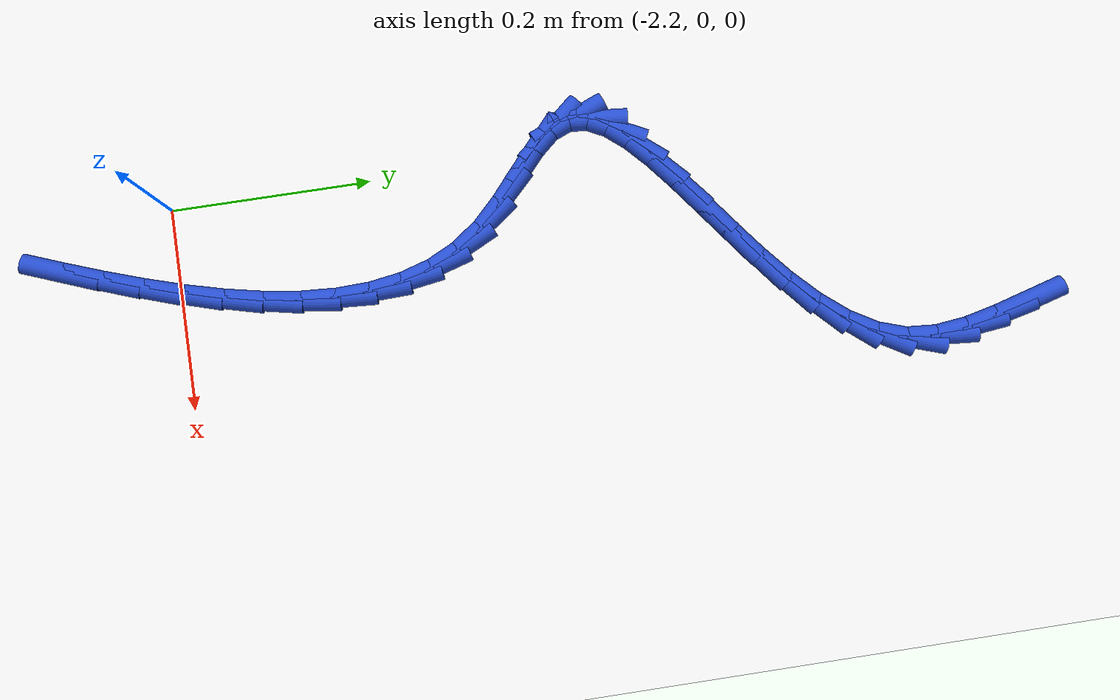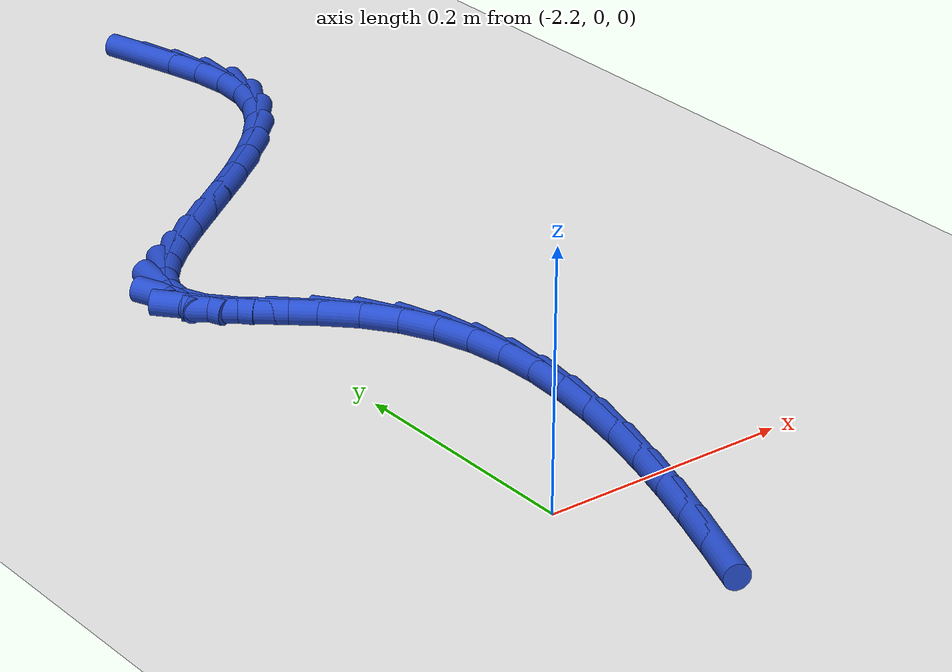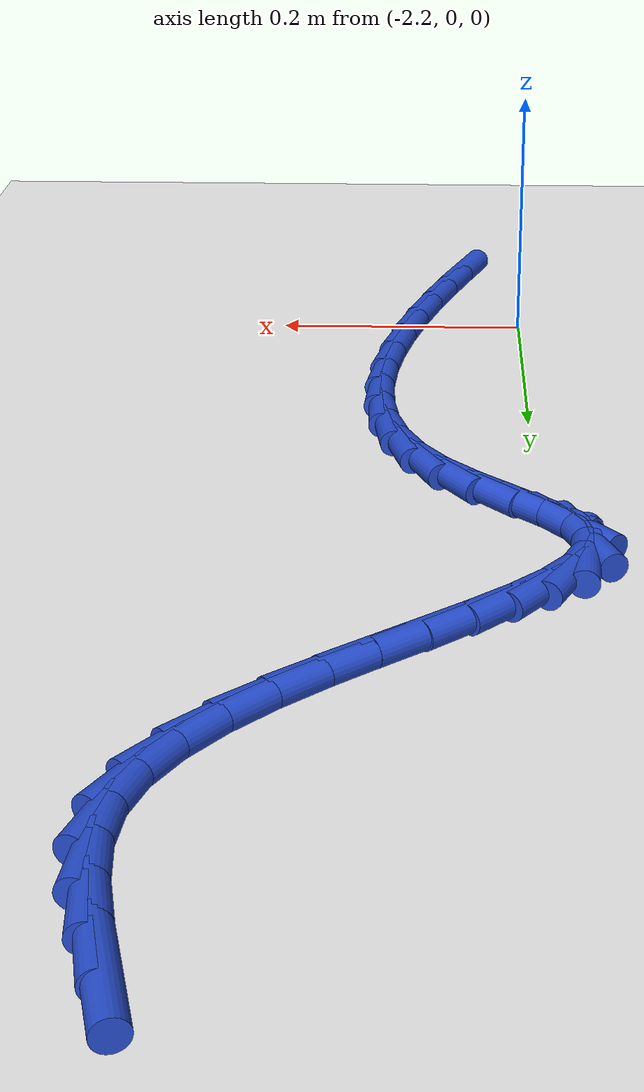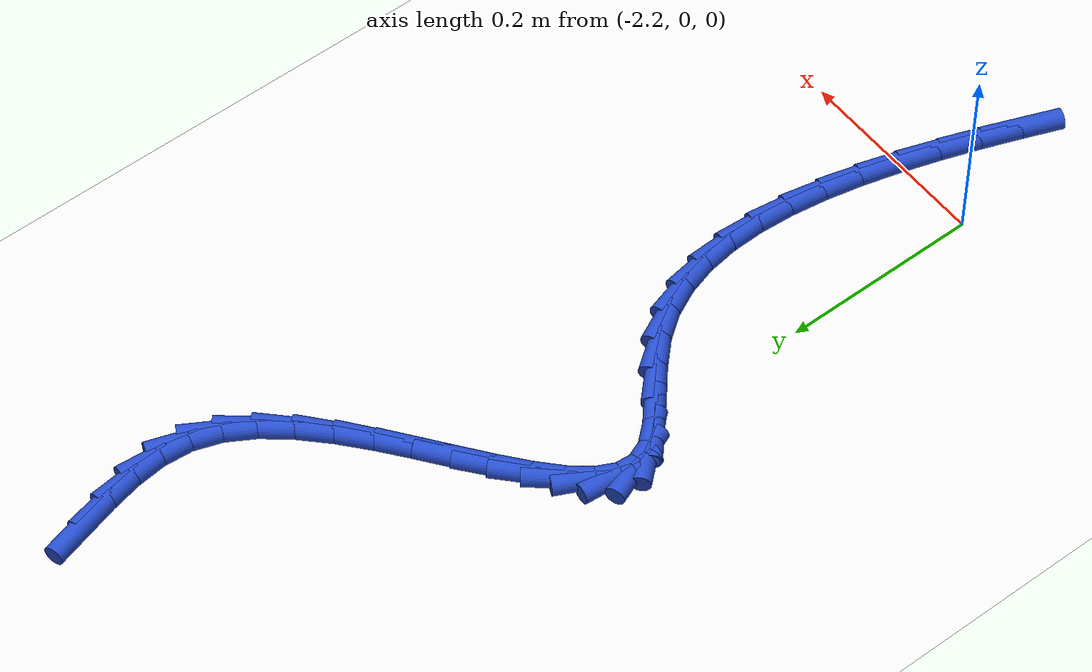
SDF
<sdf version="1.6">
 <world name="default">
  <model name="ground_plane">
   <static>1</static>
   <link name="link">
    <collision name="collision">
     <geometry><plane><normal>0 0 1</normal><size>100 100</size></plane></geometry>
     <surface><friction><ode><mu>100</mu><mu2>50</mu2></ode></friction></surface>
    </collision>
    <visual name="visual">
     <cast_shadows>0</cast_shadows>
     <geometry><plane><normal>0 0 1</normal><size>100 100</size></plane></geometry>
     <material>
      <script><uri>file://media/materials/scripts/gazebo.material</uri><name>Gazebo/WhiteGlow</name></script>
     </material>
    </visual>
   </link>
  </model>
  <model name="line">
   <link name="link_100">
    <pose>-1.9816794184876345 0.8221886198956128 0.01 0 1.57 -1.2984343508076517</pose>
    <collision name="collision">
     <geometry><cylinder><radius>0.01</radius><length>0.08</length></cylinder></geometry>
    </collision>
    <visual name="visual">
     <material>
      <script><name>Gazebo/Blue</name><uri>file://media/materials/scripts/gazebo.material</uri></script>
     </material>
     <geometry><cylinder><radius>0.01</radius><length>0.08</length></cylinder></geometry>
    </visual>
   </link>
   <link name="link_101">
    <pose>-1.9730393059040865 0.7912540363147059 0.01 0 1.57 -1.349709109669788</pose>
    <collision name="collision">
     <geometry><cylinder><radius>0.01</radius><length>0.08</length></cylinder></geometry>
    </collision>
    <visual name="visual">
     <material>
      <script><name>Gazebo/Blue</name><uri>file://media/materials/scripts/gazebo.material</uri></script>
     </material>
     <geometry><cylinder><radius>0.01</radius><length>0.08</length></cylinder></geometry>
    </visual>
   </link>
   <link name="link_102">
    <pose>-1.9660199036588826 0.7600235586736067 0.01 0 1.57 -1.4638797680123594</pose>
    <collision name="collision">
     <geometry><cylinder><radius>0.01</radius><length>0.08</length></cylinder></geometry>
    </collision>
    <visual name="visual">
     <material>
      <script><name>Gazebo/Blue</name><uri>file://media/materials/scripts/gazebo.material</uri></script>
     </material>
     <geometry><cylinder><radius>0.01</radius><length>0.08</length></cylinder></geometry>
    </visual>
   </link>
   <link name="link_103">
    <pose>-1.9627001316639885 0.729091841663659 0.01 0 1.57 1.4891236434783854</pose>
    <collision name="collision">
     <geometry><cylinder><radius>0.01</radius><length>0.08</length></cylinder></geometry>
    </collision>
    <visual name="visual">
     <material>
      <script><name>Gazebo/Blue</name><uri>file://media/materials/scripts/gazebo.material</uri></script>
     </material>
     <geometry><cylinder><radius>0.01</radius><length>0.08</length></cylinder></geometry>
    </visual>
   </link>
   <link name="link_104">
    <pose>-1.9651589098313713 0.6990535399762069 0.01 0 1.57 1.2423988542231177</pose>
    <collision name="collision">
     <geometry><cylinder><radius>0.01</radius><length>0.08</length></cylinder></geometry>
    </collision>
    <visual name="visual">
     <material>
      <script><name>Gazebo/Blue</name><uri>file://media/materials/scripts/gazebo.material</uri></script>
     </material>
     <geometry><cylinder><radius>0.01</radius><length>0.08</length></cylinder></geometry>
    </visual>
   </link>
   <link name="link_105">
    <pose>-1.974925557768404 0.6703900943811036 0.01 0 1.57 1.0310269131474126</pose>
    <collision name="collision">
     <geometry><cylinder><radius>0.01</radius><length>0.08</length></cylinder></geometry>
    </collision>
    <visual name="visual">
     <material>
      <script><name>Gazebo/Blue</name><uri>file://media/materials/scripts/gazebo.material</uri></script>
     </material>
     <geometry><cylinder><radius>0.01</radius><length>0.08</length></cylinder></geometry>
    </visual>
   </link>
   <link name="link_106">
    <pose>-1.9912655459393065 0.6431166081352525 0.01 0 1.57 0.8774465812900695</pose>
    <collision name="collision">
     <geometry><cylinder><radius>0.01</radius><length>0.08</length></cylinder></geometry>
    </collision>
    <visual name="visual">
     <material>
      <script><name>Gazebo/Blue</name><uri>file://media/materials/scripts/gazebo.material</uri></script>
     </material>
     <geometry><cylinder><radius>0.01</radius><length>0.08</length></cylinder></geometry>
    </visual>
   </link>
   <link name="link_107">
    <pose>-2.0128615363640656 0.6171281299233552 0.01 0 1.57 0.7709734945430039</pose>
    <collision name="collision">
     <geometry><cylinder><radius>0.01</radius><length>0.08</length></cylinder></geometry>
    </collision>
    <visual name="visual">
     <material>
      <script><name>Gazebo/Blue</name><uri>file://media/materials/scripts/gazebo.material</uri></script>
     </material>
     <geometry><cylinder><radius>0.01</radius><length>0.08</length></cylinder></geometry>
    </visual>
   </link>
   <link name="link_108">
    <pose>-2.038396190533468 0.5923197083211011 0.01 0 1.57 0.7003709969766965</pose>
    <collision name="collision">
     <geometry><cylinder><radius>0.01</radius><length>0.08</length></cylinder></geometry>
    </collision>
    <visual name="visual">
     <material>
      <script><name>Gazebo/Blue</name><uri>file://media/materials/scripts/gazebo.material</uri></script>
     </material>
     <geometry><cylinder><radius>0.01</radius><length>0.08</length></cylinder></geometry>
    </visual>
   </link>
   <link name="link_109">
    <pose>-2.066552169938299 0.56858639190418 0.01 0 1.57 0.6578597712538551</pose>
    <collision name="collision">
     <geometry><cylinder><radius>0.01</radius><length>0.08</length></cylinder></geometry>
    </collision>
    <visual name="visual">
     <material>
      <script><name>Gazebo/Blue</name><uri>file://media/materials/scripts/gazebo.material</uri></script>
     </material>
     <geometry><cylinder><radius>0.01</radius><length>0.08</length></cylinder></geometry>
    </visual>
   </link>
   <link name="link_110">
    <pose>-2.096012136069343 0.5458232292482821 0.01 0 1.57 0.6394243906540233</pose>
    <collision name="collision">
     <geometry><cylinder><radius>0.01</radius><length>0.08</length></cylinder></geometry>
    </collision>
    <visual name="visual">
     <material>
      <script><name>Gazebo/Blue</name><uri>file://media/materials/scripts/gazebo.material</uri></script>
     </material>
     <geometry><cylinder><radius>0.01</radius><length>0.08</length></cylinder></geometry>
    </visual>
   </link>
   <link name="link_111">
    <pose>-2.1254587504173865 0.523925268929097 0.01 0 1.57 0.6446556973529662</pose>
    <collision name="collision">
     <geometry><cylinder><radius>0.01</radius><length>0.08</length></cylinder></geometry>
    </collision>
    <visual name="visual">
     <material>
      <script><name>Gazebo/Blue</name><uri>file://media/materials/scripts/gazebo.material</uri></script>
     </material>
     <geometry><cylinder><radius>0.01</radius><length>0.08</length></cylinder></geometry>
    </visual>
   </link>
   <link name="link_112">
    <pose>-2.1535746744732136 0.5027875595223142 0.01 0 1.57 0.6773235850171195</pose>
    <collision name="collision">
     <geometry><cylinder><radius>0.01</radius><length>0.08</length></cylinder></geometry>
    </collision>
    <visual name="visual">
     <material>
      <script><name>Gazebo/Blue</name><uri>file://media/materials/scripts/gazebo.material</uri></script>
     </material>
     <geometry><cylinder><radius>0.01</radius><length>0.08</length></cylinder></geometry>
    </visual>
   </link>
   <link name="link_113">
    <pose>-2.179042569727611 0.48230514960362325 0.01 0 1.57 0.7475140016737614</pose>
    <collision name="collision">
     <geometry><cylinder><radius>0.01</radius><length>0.08</length></cylinder></geometry>
    </collision>
    <visual name="visual">
     <material>
      <script><name>Gazebo/Blue</name><uri>file://media/materials/scripts/gazebo.material</uri></script>
     </material>
     <geometry><cylinder><radius>0.01</radius><length>0.08</length></cylinder></geometry>
    </visual>
   </link>
   <link name="link_114">
    <pose>-2.2005450976713625 0.46237308774871455 0.01 0 1.57 0.8766357389121293</pose>
    <collision name="collision">
     <geometry><cylinder><radius>0.01</radius><length>0.08</length></cylinder></geometry>
    </collision>
    <visual name="visual">
     <material>
      <script><name>Gazebo/Blue</name><uri>file://media/materials/scripts/gazebo.material</uri></script>
     </material>
     <geometry><cylinder><radius>0.01</radius><length>0.08</length></cylinder></geometry>
    </visual>
   </link>
   <link name="link_115">
    <pose>-2.216764919795254 0.4428864225332774 0.01 0 1.57 1.1052006662199882</pose>
    <collision name="collision">
     <geometry><cylinder><radius>0.01</radius><length>0.08</length></cylinder></geometry>
    </collision>
    <visual name="visual">
     <material>
      <script><name>Gazebo/Blue</name><uri>file://media/materials/scripts/gazebo.material</uri></script>
     </material>
     <geometry><cylinder><radius>0.01</radius><length>0.08</length></cylinder></geometry>
    </visual>
   </link>
   <link name="link_116">
    <pose>-2.2263846975900727 0.4237402025330018 0.01 0 1.57 1.4810156180375946</pose>
    <collision name="collision">
     <geometry><cylinder><radius>0.01</radius><length>0.08</length></cylinder></geometry>
    </collision>
    <visual name="visual">
     <material>
      <script><name>Gazebo/Blue</name><uri>file://media/materials/scripts/gazebo.material</uri></script>
     </material>
     <geometry><cylinder><radius>0.01</radius><length>0.08</length></cylinder></geometry>
    </visual>
   </link>
   <link name="link_117">
    <pose>-2.2280870925466005 0.4048294763235768 0.01 0 1.57 -1.19028334417841</pose>
    <collision name="collision">
     <geometry><cylinder><radius>0.01</radius><length>0.08</length></cylinder></geometry>
    </collision>
    <visual name="visual">
     <material>
      <script><name>Gazebo/Blue</name><uri>file://media/materials/scripts/gazebo.material</uri></script>
     </material>
     <geometry><cylinder><radius>0.01</radius><length>0.08</length></cylinder></geometry>
    </visual>
   </link>
   <link name="link_118">
    <pose>-2.2205740466726827 0.38604722143189285 0.01 0 1.57 -0.8572598935476402</pose>
    <collision name="collision">
     <geometry><cylinder><radius>0.01</radius><length>0.08</length></cylinder></geometry>
    </collision>
    <visual name="visual">
     <material>
      <script><name>Gazebo/Blue</name><uri>file://media/materials/scripts/gazebo.material</uri></script>
     </material>
     <geometry><cylinder><radius>0.01</radius><length>0.08</length></cylinder></geometry>
    </visual>
   </link>
   <link name="link_119">
    <pose>-2.2041809837090285 0.3671109522282959 0.01 0 1.57 -0.7278493655437754</pose>
    <collision name="collision">
     <geometry><cylinder><radius>0.01</radius><length>0.08</length></cylinder></geometry>
    </collision>
    <visual name="visual">
     <material>
      <script><name>Gazebo/Blue</name><uri>file://media/materials/scripts/gazebo.material</uri></script>
     </material>
     <geometry><cylinder><radius>0.01</radius><length>0.08</length></cylinder></geometry>
    </visual>
   </link>
   <link name="link_120">
    <pose>-2.1820956732341763 0.3474317936119859 0.01 0 1.57 -0.713606265866145</pose>
    <collision name="collision">
     <geometry><cylinder><radius>0.01</radius><length>0.08</length></cylinder></geometry>
    </collision>
    <visual name="visual">
     <material>
      <script><name>Gazebo/Blue</name><uri>file://media/materials/scripts/gazebo.material</uri></script>
     </material>
     <geometry><cylinder><radius>0.01</radius><length>0.08</length></cylinder></geometry>
    </visual>
   </link>
   <link name="link_121">
    <pose>-2.157792944021364 0.32639003554143264 0.01 0 1.57 -0.7849368677041136</pose>
    <collision name="collision">
     <geometry><cylinder><radius>0.01</radius><length>0.08</length></cylinder></geometry>
    </collision>
    <visual name="visual">
     <material>
      <script><name>Gazebo/Blue</name><uri>file://media/materials/scripts/gazebo.material</uri></script>
     </material>
     <geometry><cylinder><radius>0.01</radius><length>0.08</length></cylinder></geometry>
    </visual>
   </link>
   <link name="link_122">
    <pose>-2.13474762484383 0.3033659679751056 0.01 0 1.57 -0.9395045904444028</pose>
    <collision name="collision">
     <geometry><cylinder><radius>0.01</radius><length>0.08</length></cylinder></geometry>
    </collision>
    <visual name="visual">
     <material>
      <script><name>Gazebo/Blue</name><uri>file://media/materials/scripts/gazebo.material</uri></script>
     </material>
     <geometry><cylinder><radius>0.01</radius><length>0.08</length></cylinder></geometry>
    </visual>
   </link>
   <link name="link_123">
    <pose>-2.1160723429298325 0.27782170743511875 0.01 0 1.57 -1.117320279226214</pose>
    <collision name="collision">
     <geometry><cylinder><radius>0.01</radius><length>0.08</length></cylinder></geometry>
    </collision>
    <visual name="visual">
     <material>
      <script><name>Gazebo/Blue</name><uri>file://media/materials/scripts/gazebo.material</uri></script>
     </material>
     <geometry><cylinder><radius>0.01</radius><length>0.08</length></cylinder></geometry>
    </visual>
   </link>
   <link name="link_124">
    <pose>-2.102405428104998 0.24977834998603501 0.01 0 1.57 -1.280299819294801</pose>
    <collision name="collision">
     <geometry><cylinder><radius>0.01</radius><length>0.08</length></cylinder></geometry>
    </collision>
    <visual name="visual">
     <material>
      <script><name>Gazebo/Blue</name><uri>file://media/materials/scripts/gazebo.material</uri></script>
     </material>
     <geometry><cylinder><radius>0.01</radius><length>0.08</length></cylinder></geometry>
    </visual>
   </link>
   <link name="link_125">
    <pose>-2.093350819158241 0.2194906755769031 0.01 0 1.57 -1.421894911134849</pose>
    <collision name="collision">
     <geometry><cylinder><radius>0.01</radius><length>0.08</length></cylinder></geometry>
    </collision>
    <visual name="visual">
     <material>
      <script><name>Gazebo/Blue</name><uri>file://media/materials/scripts/gazebo.material</uri></script>
     </material>
     <geometry><cylinder><radius>0.01</radius><length>0.08</length></cylinder></geometry>
    </visual>
   </link>
   <link name="link_126">
    <pose>-2.0885089768297855 0.18721424989823557 0.01 0 1.57 -1.5405607121514129</pose>
    <collision name="collision">
     <geometry><cylinder><radius>0.01</radius><length>0.08</length></cylinder></geometry>
    </collision>
    <visual name="visual">
     <material>
      <script><name>Gazebo/Blue</name><uri>file://media/materials/scripts/gazebo.material</uri></script>
     </material>
     <geometry><cylinder><radius>0.01</radius><length>0.08</length></cylinder></geometry>
    </visual>
   </link>
   <link name="link_127">
    <pose>-2.087480361859858 0.1532046386405466 0.01 0 1.57 1.503687917558316</pose>
    <collision name="collision">
     <geometry><cylinder><radius>0.01</radius><length>0.08</length></cylinder></geometry>
    </collision>
    <visual name="visual">
     <material>
      <script><name>Gazebo/Blue</name><uri>file://media/materials/scripts/gazebo.material</uri></script>
     </material>
     <geometry><cylinder><radius>0.01</radius><length>0.08</length></cylinder></geometry>
    </visual>
   </link>
   <link name="link_128">
    <pose>-2.0898654349886816 0.1177174074943486 0.01 0 1.57 1.4247628002160668</pose>
    <collision name="collision">
     <geometry><cylinder><radius>0.01</radius><length>0.08</length></cylinder></geometry>
    </collision>
    <visual name="visual">
     <material>
      <script><name>Gazebo/Blue</name><uri>file://media/materials/scripts/gazebo.material</uri></script>
     </material>
     <geometry><cylinder><radius>0.01</radius><length>0.08</length></cylinder></geometry>
    </visual>
   </link>
   <link name="link_129">
    <pose>-2.095264656956482 0.08100812215015474 0.01 0 1.57 1.3612146449629272</pose>
    <collision name="collision">
     <geometry><cylinder><radius>0.01</radius><length>0.08</length></cylinder></geometry>
    </collision>
    <visual name="visual">
     <material>
      <script><name>Gazebo/Blue</name><uri>file://media/materials/scripts/gazebo.material</uri></script>
     </material>
     <geometry><cylinder><radius>0.01</radius><length>0.08</length></cylinder></geometry>
    </visual>
   </link>
   <link name="link_130">
    <pose>-2.103278488503484 0.04333234829847802 0.01 0 1.57 1.3103775830578732</pose>
    <collision name="collision">
     <geometry><cylinder><radius>0.01</radius><length>0.08</length></cylinder></geometry>
    </collision>
    <visual name="visual">
     <material>
      <script><name>Gazebo/Blue</name><uri>file://media/materials/scripts/gazebo.material</uri></script>
     </material>
     <geometry><cylinder><radius>0.01</radius><length>0.08</length></cylinder></geometry>
    </visual>
   </link>
   <link name="link_131">
    <pose>-2.113507390369912 0.004945651629830985 0.01 0 1.57 1.2701108873211229</pose>
    <collision name="collision">
     <geometry><cylinder><radius>0.01</radius><length>0.08</length></cylinder></geometry>
    </collision>
    <visual name="visual">
     <material>
      <script><name>Gazebo/Blue</name><uri>file://media/materials/scripts/gazebo.material</uri></script>
     </material>
     <geometry><cylinder><radius>0.01</radius><length>0.08</length></cylinder></geometry>
    </visual>
   </link>
   <link name="link_132">
    <pose>-2.1255518232959916 -0.033896402165272156 0.01 0 1.57 1.2387890650702844</pose>
    <collision name="collision">
     <geometry><cylinder><radius>0.01</radius><length>0.08</length></cylinder></geometry>
    </collision>
    <visual name="visual">
     <material>
      <script><name>Gazebo/Blue</name><uri>file://media/materials/scripts/gazebo.material</uri></script>
     </material>
     <geometry><cylinder><radius>0.01</radius><length>0.08</length></cylinder></geometry>
    </visual>
   </link>
   <link name="link_133">
    <pose>-2.1390122480219467 -0.07293824739631892 0.01 0 1.57 1.2152430195535895</pose>
    <collision name="collision">
     <geometry><cylinder><radius>0.01</radius><length>0.08</length></cylinder></geometry>
    </collision>
    <visual name="visual">
     <material>
      <script><name>Gazebo/Blue</name><uri>file://media/materials/scripts/gazebo.material</uri></script>
     </material>
     <geometry><cylinder><radius>0.01</radius><length>0.08</length></cylinder></geometry>
    </visual>
   </link>
   <link name="link_134">
    <pose>-2.153489125288003 -0.11192431837279632 0.01 0 1.57 1.1987013586208963</pose>
    <collision name="collision">
     <geometry><cylinder><radius>0.01</radius><length>0.08</length></cylinder></geometry>
    </collision>
    <visual name="visual">
     <material>
      <script><name>Gazebo/Blue</name><uri>file://media/materials/scripts/gazebo.material</uri></script>
     </material>
     <geometry><cylinder><radius>0.01</radius><length>0.08</length></cylinder></geometry>
    </visual>
   </link>
  </model>
 </world>
</sdf>
